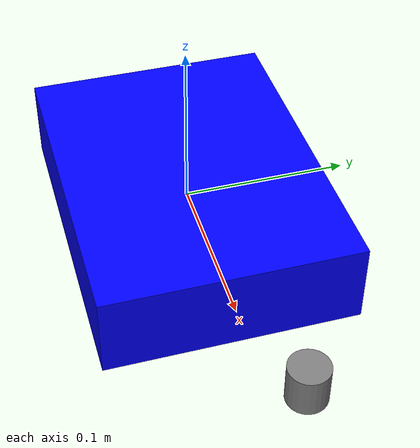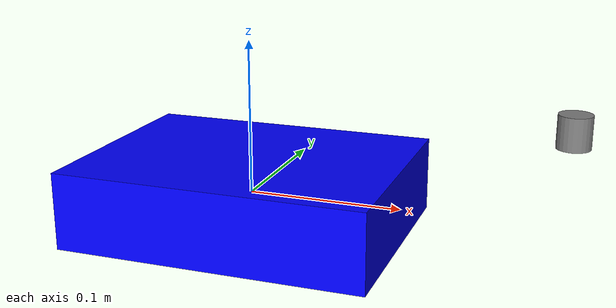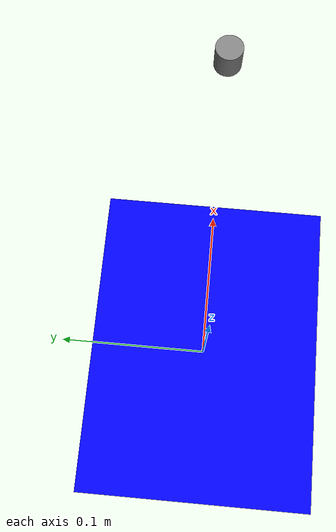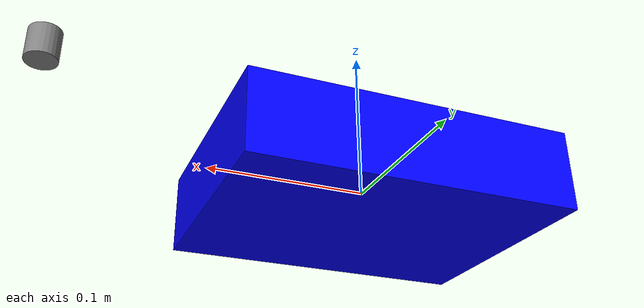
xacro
<?xml version="1.0"?>
<robot name="my_robot" xmlns:xacro="http://ros.org/wiki/xacro">
  <xacro:property name="wheel_radius" value="0.03"/>
  <xacro:property name="base_width" value="0.2"/>

  <link name="base_link">
    <visual>
      <geometry>
        <box size="0.2 0.15 0.05"/>
      </geometry>
      <material name="blue">
        <color rgba="0 0 1 1"/>
      </material>
    </visual>
  </link>

  <link name="ultrasonic_link">
    <visual>
      <geometry>
        <cylinder length="0.02" radius="0.01"/>
      </geometry>
      <origin xyz="0.1 0 0.03" rpy="0 0 0"/>
      <material name="grey">
        <color rgba="0.5 0.5 0.5 1"/>
      </material>
    </visual>
  </link>

  <joint name="ultrasonic_joint" type="fixed">
    <parent link="base_link"/>
    <child link="ultrasonic_link"/>
    <origin xyz="0.1 0 0.03" rpy="0 0 0"/>
  </joint>
</robot>
